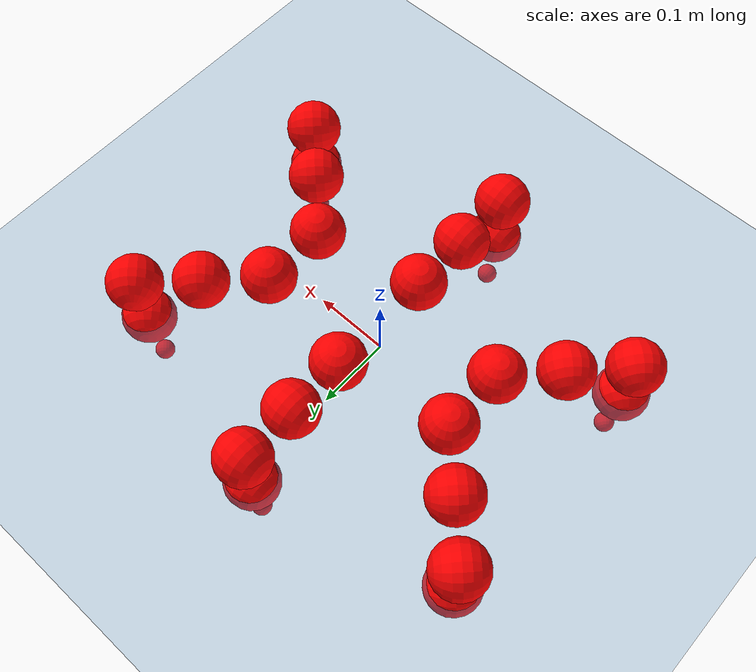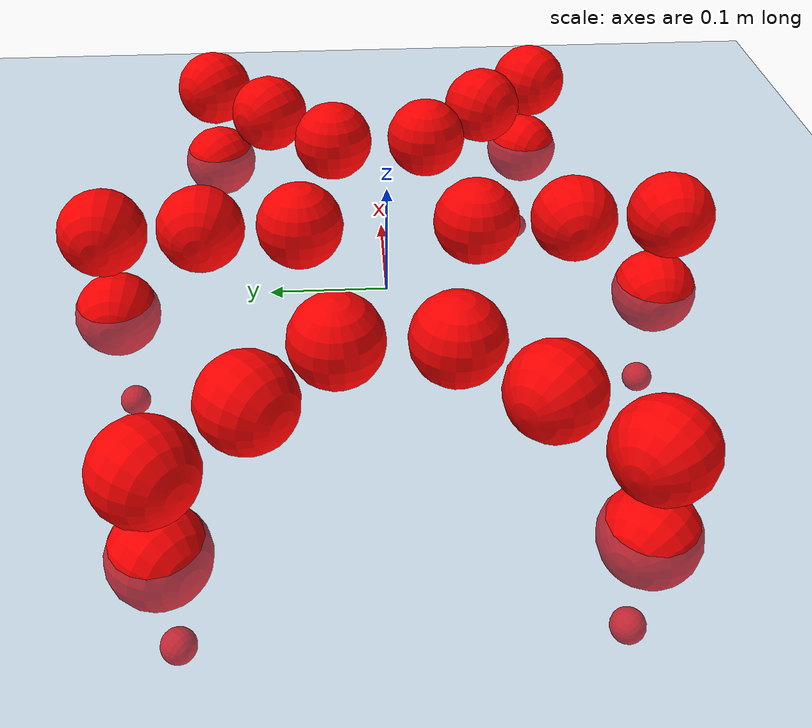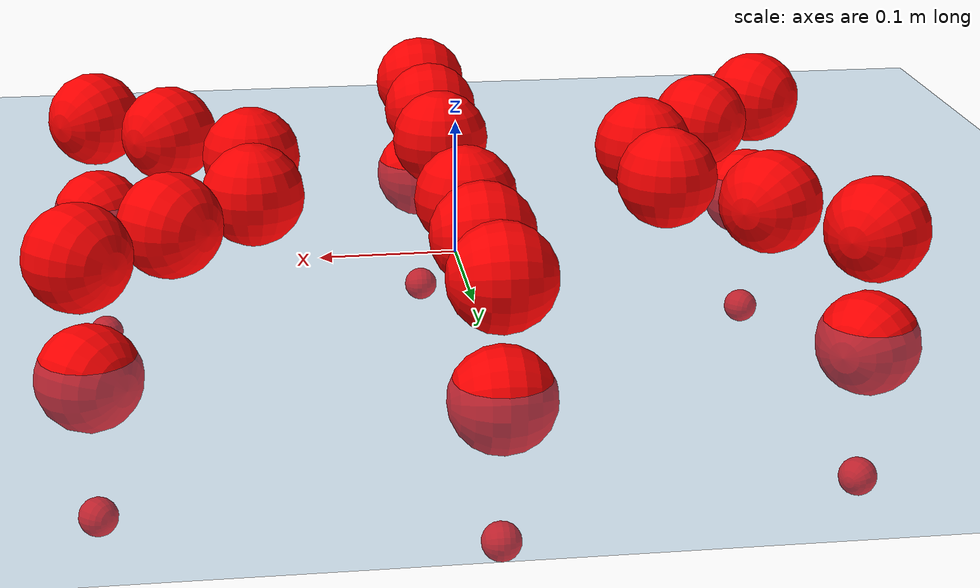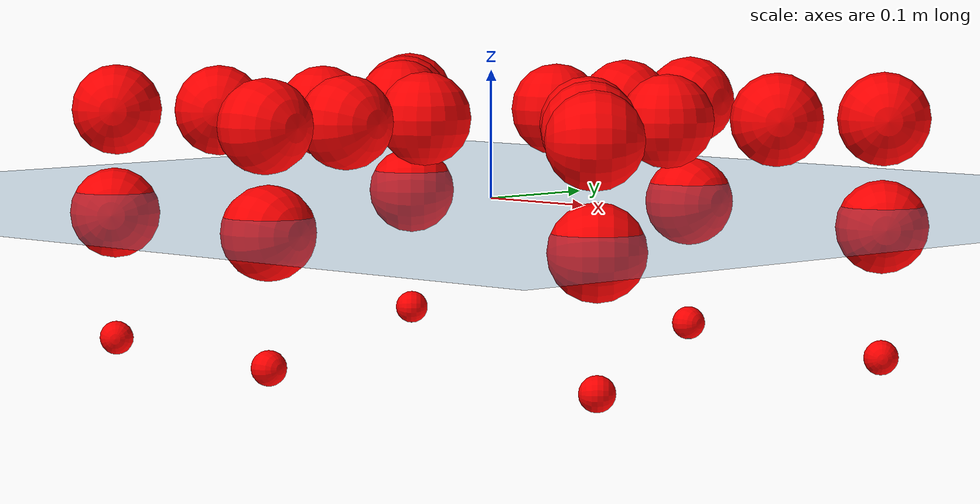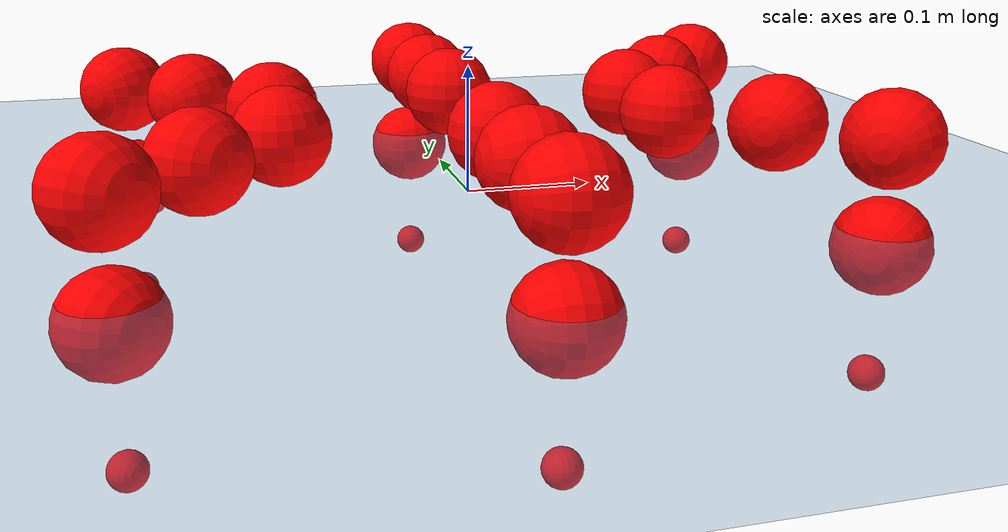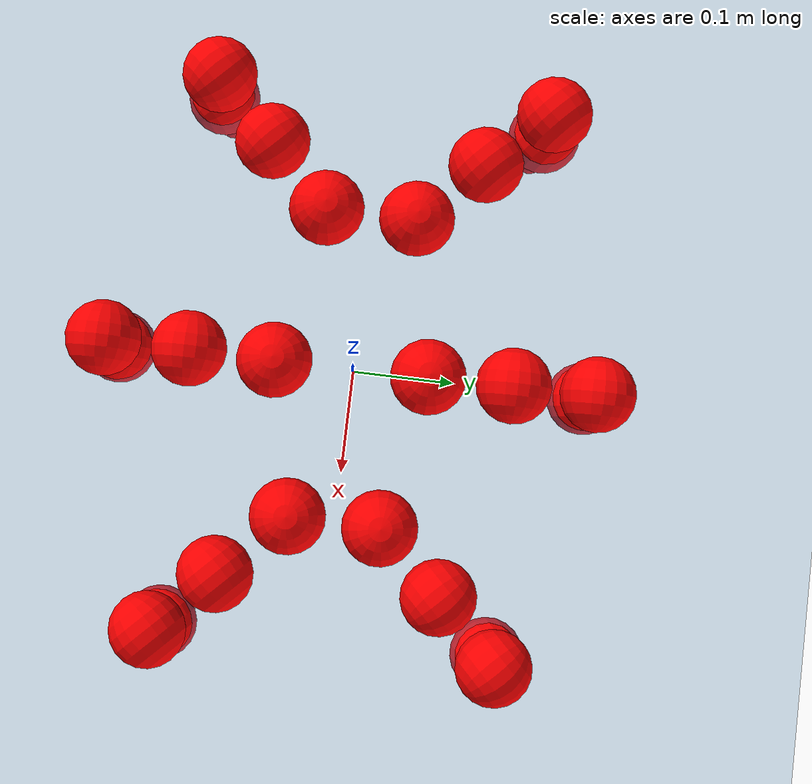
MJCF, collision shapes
<mujoco model="Golem">
  <compiler angle="radian" assetdir="assets" balanceinertia="true" inertiafromgeom="false"/>

  <option timestep="0.005" density="1.2" viscosity="2e-05"/>

  <size nkey="1"/>

  <visual>
    <quality shadowsize="8192"/>
    <map shadowclip="0.5"/>
  </visual>

  <default>
    <default class="/">
      <joint armature="0.01" damping="0.01" frictionloss="0.01"/>
      <geom contype="0" conaffinity="0" group="1" solref="-1000 -80"/>
      <site size="0.01 0.005 0.005" group="5"/>
      <general forcelimited="true" biastype="affine" gainprm="25" biasprm="0 -25 -0.5"/>
      <default class="visual">
        <geom type="mesh" group="2"/>
      </default>
      <default class="collision">
        <geom group="3"/>
      </default>
      <default class="foot">
        <geom size="0.01 0 0" condim="6" group="4" priority="1" solimp="0.015 1 0.01"/>
      </default>
      <default class="reward_collision_sphere">
        <geom group="5" rgba="1 0 0 1"/>
      </default>
    </default>
  </default>

  <asset>
    <texture type="skybox" colorspace="auto" name="//unnamed_texture_0" builtin="gradient" rgb1="0.95 0.95 0.95" rgb2="0.95 0.95 0.95" width="100" height="600"/>
    <texture type="2d" colorspace="auto" name="texplane" builtin="checker" rgb1="0.345 0.575 0.748" rgb2="0.345 0.575 0.748" markrgb="1 1 1" width="512" height="512"/>
    <material name="MatPlane" class="/" texture="texplane" texuniform="true" texrepeat="2 2" specular="0.9"/>
    <mesh name="body" class="/" file="body.stl" scale="0.001 0.001 0.001"/>
    <mesh name="coxa" class="/" file="coxa.stl" scale="0.001 0.001 0.001"/>
    <mesh name="femur" class="/" file="femur.stl" scale="0.001 0.001 0.001"/>
    <mesh name="tibia" class="/" file="tibia.stl" scale="0.001 0.001 0.001"/>
    <mesh name="tarsus" class="/" file="tarsus.stl" scale="0.001 0.001 0.001"/>
  </asset>

  <worldbody>
    <geom name="floor" class="/" size="100 100 0.125" type="plane" group="0" material="MatPlane"/>
    <light name="toplight_shadow" class="/" pos="0 0 5" dir="0.0990148 0.0990148 -0.990148" type="directional" ambient="0.04 0.04 0.04" diffuse="0.55 0.55 0.55" specular="0.12 0.12 0.12"/>
    <light name="toplight_fill" class="/" pos="0 0 5" dir="0.0990148 0.0990148 -0.990148" type="directional" castshadow="false" ambient="0.04 0.04 0.04" diffuse="0.3 0.3 0.3" specular="0.08 0.08 0.08"/>
    <body name="trunk" pos="-7.23248e-05 0.000641343 -0.00110552" quat="0.999999 -0.000196982 -0.000343657 0.000926602">
      <inertial pos="-0.000101056 0.000249122 -0.0029656" quat="0.999989 -0.0044497 0.00139075 6.6379e-05" mass="2.65067" diaginertia="0.00740116 0.00250726 0.0105912"/>
      <joint name="//unnamed_joint_0" type="free"/>
      <geom name="//unnamed_geom_1" class="/" pos="0 0 0.0647334" quat="1 0 0 0" type="mesh" rgba="0.9 0.9 0.9 1" mesh="body"/>
      <site name="imu" class="/" pos="0.127461 0.0107314 0.114358" size="0.00903181"/>
      <camera name="track" class="/" pos="0 -1.51682 0" quat="0.707107 0.707107 0 0" mode="trackcom"/>
      <camera name="ego_camera" class="/" pos="0.122157 0 0.101146" quat="-0.5 -0.5 0.5 0.5"/>
      <body name="coxa_RR" pos="-0.167827 -0.0629033 0.0651267" quat="0.382873 0.001279 0.000312798 -0.9238">
        <inertial pos="0.00176027 -0.000937438 -0.000289994" quat="0.999999 -0.000388575 0.00150981 -0.000725235" mass="0.153592" diaginertia="0.00751934 0.00261999 0.0110778"/>
        <joint name="coxa_joint_RR" class="/" pos="0 0 0" axis="0.00732698 0.00308541 -0.999968" range="-3.14734 3.15888" armature="0.00861523" damping="0" frictionloss="0.00871047"/>
        <geom name="//unnamed_geom_2" class="/" type="mesh" rgba="0.2 0.2 0.2 1" mesh="coxa"/>
        <geom name="//unnamed_geom_3" class="reward_collision_sphere" size="0.0361272" pos="-0.0281901 0 0"/>
        <body name="femur_RR" pos="0.0548594 0.000173587 0.000595159" quat="0.498885 -0.500158 0.500567 0.500387">
          <inertial pos="0.000104318 0.00255221 0.000368976" quat="0.999988 -0.0013898 0.000661827 -0.00472748" mass="0.143813" diaginertia="0.00717602 0.0024396 0.0102671"/>
          <joint name="femur_joint_RR" class="/" pos="0 0 0" axis="4.08831e-05 -0.00109152 -0.999999" range="-3.15832 3.15778" armature="0.00999956" damping="0" frictionloss="0.00900846"/>
          <geom name="//unnamed_geom_4" class="/" type="mesh" rgba="0.9 0.9 0.9 1" mesh="femur"/>
          <geom name="//unnamed_geom_5" class="reward_collision_sphere" size="0.0361272"/>
          <body name="tibia_RR" pos="-0.00101926 -0.0823876 -0.000601625" quat="-1.42822e-05 1 -0.000176891 9.1216e-05">
            <inertial pos="0.000319548 0.00266939 -0.000676632" quat="1 -0.000304172 4.4699e-05 -0.000191831" mass="0.143628" diaginertia="0.00713304 0.00245607 0.0103366"/>
            <joint name="tibia_joint_RR" class="/" pos="0 0 0" axis="-0.0129646 0.00212745 0.999914" range="-3.08866 3.12199" armature="0.00876526" damping="0.00329861" frictionloss="0.0102208"/>
            <geom name="//unnamed_geom_6" class="/" type="mesh" rgba="0.2 0.2 0.2 1" mesh="tibia"/>
            <geom name="//unnamed_geom_7" class="reward_collision_sphere" size="0.0361272"/>
            <body name="tarsus_RR" pos="0.0826611 0.00214378 -0.00251051" quat="1 8.72958e-05 0.000119849 -0.000187029">
              <inertial pos="0.0564701 0.00107182 0.0015149" quat="0.500166 0.500022 0.499699 0.500113" mass="0.143179" diaginertia="0.00704734 0.00246637 0.0106097"/>
              <joint name="tarsus_joint_RR" class="/" pos="0 0 0" axis="0.00757511 0.000830598 0.999971" range="-3.14878 3.13256" armature="0.00938257" damping="0.00493114" frictionloss="0.0089236"/>
              <geom name="//unnamed_geom_8" class="/" type="mesh" rgba="0.9 0.9 0.9 1" mesh="tarsus"/>
              <geom name="foot_1" class="foot" size="0.0082936" pos="0.105243 0 0" quat="0 -0.707107 0 0.707107"/>
              <geom name="//unnamed_geom_10" class="reward_collision_sphere" size="0.0361272"/>
              <geom name="//unnamed_geom_11" class="reward_collision_sphere" size="0.0135477" pos="0.101015 0 0"/>
              <site name="foot_1" class="foot" pos="0.105243 0 0" quat="0 -0.707107 0 0.707107" size="0.00903181"/>
            </body>
          </body>
        </body>
      </body>
      <body name="coxa_RM" pos="0.00233947 -0.103479 0.0666789" quat="0.707083 -0.000320964 0.000145262 -0.707131">
        <inertial pos="0.000294937 0.000280391 -0.00193723" quat="0.999913 0.0125494 -0.00223382 -0.00346268" mass="0.152024" diaginertia="0.00761856 0.0026754 0.0111827"/>
        <joint name="coxa_joint_RM" class="/" pos="0 0 0" axis="0.0110736 -0.000486616 -0.999939" range="-3.13538 3.1326" armature="0.00950269" damping="0.01119" frictionloss="0.00956357"/>
        <geom name="//unnamed_geom_12" class="/" type="mesh" rgba="0.2 0.2 0.2 1" mesh="coxa"/>
        <geom name="//unnamed_geom_13" class="reward_collision_sphere" size="0.0361272" pos="-0.0281901 0 0"/>
        <body name="femur_RM" pos="0.0531233 -0.00148115 0.000358444" quat="0.499958 -0.500152 0.499933 0.499958">
          <inertial pos="6.78919e-05 0.00135906 -0.000322358" quat="0.999995 -0.000672024 0.00122663 -0.0027575" mass="0.147669" diaginertia="0.00710338 0.00249018 0.0105516"/>
          <joint name="femur_joint_RM" class="/" pos="0 0 0" axis="-0.000256456 -0.000274957 -1" range="-3.0994 3.14062" armature="0.00970118" damping="0.010308" frictionloss="0.010112"/>
          <geom name="//unnamed_geom_14" class="/" type="mesh" rgba="0.9 0.9 0.9 1" mesh="femur"/>
          <geom name="//unnamed_geom_15" class="reward_collision_sphere" size="0.0361272"/>
          <body name="tibia_RM" pos="-0.000601537 -0.0812905 -0.000881545" quat="-6.12441e-05 1 -7.17129e-05 9.96709e-05">
            <inertial pos="0.000583648 0.000258526 0.00188026" quat="0.99999 0.00390059 -0.00100208 -0.0017683" mass="0.151921" diaginertia="0.00727943 0.00251825 0.01056"/>
            <joint name="tibia_joint_RM" class="/" pos="0 0 0" axis="-0.00686167 -0.00860872 0.999939" stiffness="0.000337852" range="-3.14933 3.16654" armature="0.00786937" damping="0.0133068" frictionloss="0.0101742"/>
            <geom name="//unnamed_geom_16" class="/" type="mesh" rgba="0.2 0.2 0.2 1" mesh="tibia"/>
            <geom name="//unnamed_geom_17" class="reward_collision_sphere" size="0.0361272"/>
            <body name="tarsus_RM" pos="0.0796079 -0.00240449 -0.000522535" quat="1 0.000594964 -0.000400549 0.000121143">
              <inertial pos="0.056232 0.000411901 0.000116242" quat="0.499662 0.500593 0.500223 0.49952" mass="0.155382" diaginertia="0.00750633 0.00258557 0.0109172"/>
              <joint name="tarsus_joint_RM" class="/" pos="0 0 0" axis="-0.00147836 -0.00269779 0.999995" range="-3.15402 3.15647" armature="0.00910627" damping="0.00795112" frictionloss="0.00856978"/>
              <geom name="//unnamed_geom_18" class="/" type="mesh" rgba="0.9 0.9 0.9 1" mesh="tarsus"/>
              <geom name="foot_2" class="foot" size="0.00870027" pos="0.105243 0 0" quat="0 -0.707107 0 0.707107"/>
              <geom name="//unnamed_geom_20" class="reward_collision_sphere" size="0.0361272"/>
              <geom name="//unnamed_geom_21" class="reward_collision_sphere" size="0.0135477" pos="0.101015 0 0"/>
              <site name="foot_2" class="foot" pos="0.105243 0 0" quat="0 -0.707107 0 0.707107" size="0.00903181"/>
            </body>
          </body>
        </body>
      </body>
      <body name="coxa_RF" pos="0.166778 -0.0655208 0.0671975" quat="0.923911 -0.000453775 -0.000352796 -0.382608">
        <inertial pos="-0.00244944 0.000439342 -0.00159752" quat="0.999989 0.00294872 0.00354397 -0.00111169" mass="0.147163" diaginertia="0.00759667 0.00258373 0.010998"/>
        <joint name="coxa_joint_RF" class="/" pos="0 0 0" axis="0.00821153 0.00573587 -0.99995" range="-3.13259 3.1177" armature="0.00932047" damping="0.0219162" frictionloss="0.0101289"/>
        <geom name="//unnamed_geom_22" class="/" type="mesh" rgba="0.2 0.2 0.2 1" mesh="coxa"/>
        <geom name="//unnamed_geom_23" class="reward_collision_sphere" size="0.0361272" pos="-0.0281901 0 0"/>
        <body name="femur_RF" pos="0.0575523 -0.000123511 0.00105508" quat="0.50061 -0.499087 0.499903 0.500399">
          <inertial pos="-0.000224782 7.49342e-05 0.00114093" quat="0.999998 -0.00133724 -0.000585843 -0.00143485" mass="0.148654" diaginertia="0.00725208 0.00248339 0.0104521"/>
          <joint name="femur_joint_RF" class="/" pos="0 0 0" axis="-0.000458024 0.00371176 -0.999993" range="-3.14319 3.1375" armature="0.00930163" damping="0.011586" frictionloss="0.00896871"/>
          <geom name="//unnamed_geom_24" class="/" type="mesh" rgba="0.9 0.9 0.9 1" mesh="femur"/>
          <geom name="//unnamed_geom_25" class="reward_collision_sphere" size="0.0361272"/>
          <body name="tibia_RF" pos="0.00251613 -0.0809008 0.00130333" quat="0.000172837 1 0.000307114 2.90597e-05">
            <inertial pos="0.00015465 -0.0022807 -0.0020451" quat="0.999928 0.000173461 0.00677266 0.00987101" mass="0.141933" diaginertia="0.00715324 0.00245498 0.0105731"/>
            <joint name="tibia_joint_RF" class="/" pos="0 0 0" axis="-0.00235237 0.010575 0.999941" stiffness="0.00436043" range="-3.14086 3.14779" armature="0.00930701" damping="0.000693123" frictionloss="0.00868805"/>
            <geom name="//unnamed_geom_26" class="/" type="mesh" rgba="0.2 0.2 0.2 1" mesh="tibia"/>
            <geom name="//unnamed_geom_27" class="reward_collision_sphere" size="0.0361272"/>
            <body name="tarsus_RF" pos="0.0796429 2.52175e-05 -0.00159455" quat="1 -5.75698e-05 1.68633e-05 4.29368e-05">
              <inertial pos="0.0545986 -0.000706092 -0.00012844" quat="0.49806 0.498395 0.500621 0.502908" mass="0.148476" diaginertia="0.0073459 0.00244454 0.0105295"/>
              <joint name="tarsus_joint_RF" class="/" pos="0 0 0" axis="0.0107957 0.0117159 0.999873" range="-3.13207 3.15945" armature="0.00937259" damping="0.00324871" frictionloss="0.00928106"/>
              <geom name="//unnamed_geom_28" class="/" type="mesh" rgba="0.9 0.9 0.9 1" mesh="tarsus"/>
              <geom name="foot_3" class="foot" size="0.00887155" pos="0.105243 0 0" quat="0 -0.707107 0 0.707107"/>
              <geom name="//unnamed_geom_30" class="reward_collision_sphere" size="0.0361272"/>
              <geom name="//unnamed_geom_31" class="reward_collision_sphere" size="0.0135477" pos="0.101015 0 0"/>
              <site name="foot_3" class="foot" pos="0.105243 0 0" quat="0 -0.707107 0 0.707107" size="0.00903181"/>
            </body>
          </body>
        </body>
      </body>
      <body name="coxa_LR" pos="-0.166876 0.0637135 0.0670963" quat="0.382662 -0.000234522 0.00118106 0.923888">
        <inertial pos="2.88419e-05 0.00183246 -0.00196638" quat="0.99999 0.00382406 0.000711801 -0.00235488" mass="0.144878" diaginertia="0.00733858 0.00244403 0.0104752"/>
        <joint name="coxa_joint_LR" class="/" pos="0 0 0" axis="-0.0128234 0.00355446 -0.999911" range="-3.13532 3.18842" armature="0.0091962" damping="0.0105757" frictionloss="0.00972882"/>
        <geom name="//unnamed_geom_32" class="/" type="mesh" rgba="0.2 0.2 0.2 1" mesh="coxa"/>
        <geom name="//unnamed_geom_33" class="reward_collision_sphere" size="0.0361272" pos="-0.0281901 0 0"/>
        <body name="femur_LR" pos="0.0561953 -0.000319981 -0.000243684" quat="0.500144 -0.49978 0.500072 0.500003">
          <inertial pos="-6.71491e-05 0.0014468 -0.000936704" quat="0.999916 0.0111638 0.00643567 0.00104236" mass="0.149526" diaginertia="0.00758394 0.00257298 0.0105727"/>
          <joint name="femur_joint_LR" class="/" pos="0 0 0" axis="-0.00770106 0.0117074 0.999902" range="-3.13985 3.12725" armature="0.0101831" damping="0.00530863" frictionloss="0.00914836"/>
          <geom name="//unnamed_geom_34" class="/" type="mesh" rgba="0.9 0.9 0.9 1" mesh="femur"/>
          <geom name="//unnamed_geom_35" class="reward_collision_sphere" size="0.0361272"/>
          <body name="tibia_LR" pos="0.00154433 -0.0826192 -0.00267337" quat="0.000113351 1 0.000321511 -0.000180964">
            <inertial pos="-0.000392059 -0.000755755 0.00200248" quat="0.999976 -0.00438108 -0.00539304 0.000709641" mass="0.149858" diaginertia="0.00715314 0.00247258 0.0105116"/>
            <joint name="tibia_joint_LR" class="/" pos="0 0 0" axis="0.0017345 -0.000860212 -0.999998" range="-3.0885 3.17126" armature="0.0080903" damping="0.00435967" frictionloss="0.00904744"/>
            <geom name="//unnamed_geom_36" class="/" type="mesh" rgba="0.2 0.2 0.2 1" mesh="tibia"/>
            <geom name="//unnamed_geom_37" class="reward_collision_sphere" size="0.0361272"/>
            <body name="tarsus_LR" pos="0.081309 0.0005247 0.00174718" quat="1 -3.48724e-05 -6.21104e-05 5.27444e-05">
              <inertial pos="0.0574867 -0.00199151 -0.000792589" quat="0.499634 0.500601 0.499619 0.500146" mass="0.144339" diaginertia="0.00741521 0.00262033 0.0107514"/>
              <joint name="tarsus_joint_LR" class="/" pos="0 0 0" axis="0.00363441 0.000621784 -0.999993" range="-3.11973 3.1566" armature="0.00908679" damping="0.00207885" frictionloss="0.00869389"/>
              <geom name="//unnamed_geom_38" class="/" type="mesh" rgba="0.9 0.9 0.9 1" mesh="tarsus"/>
              <geom name="foot_4" class="foot" size="0.00928516" pos="0.105243 0 0" quat="0.707107 0 -0.707107 0"/>
              <geom name="//unnamed_geom_40" class="reward_collision_sphere" size="0.0361272"/>
              <geom name="//unnamed_geom_41" class="reward_collision_sphere" size="0.0135477" pos="0.101015 0 0"/>
              <site name="foot_4" class="foot" pos="0.105243 0 0" quat="0.707107 0 -0.707107 0" size="0.00903181"/>
            </body>
          </body>
        </body>
      </body>
      <body name="coxa_LM" pos="0.00204255 0.0992233 0.067946" quat="0.707067 0.000830214 9.92279e-05 0.707146">
        <inertial pos="0.000381152 0.000269948 -0.00200812" quat="0.999992 0.000841828 0.000841728 -0.00380911" mass="0.146385" diaginertia="0.0072189 0.00248234 0.010458"/>
        <joint name="coxa_joint_LM" class="/" pos="0 0 0" axis="-0.000233627 0.00383532 -0.999993" range="-3.12275 3.12816" armature="0.00862954" damping="0.0025185" frictionloss="0.0090141"/>
        <geom name="//unnamed_geom_42" class="/" type="mesh" rgba="0.2 0.2 0.2 1" mesh="coxa"/>
        <geom name="//unnamed_geom_43" class="reward_collision_sphere" size="0.0361272" pos="-0.0281901 0 0"/>
        <body name="femur_LM" pos="0.0527256 0.00076971 0.000430276" quat="0.500018 -0.500017 0.499985 0.499981">
          <inertial pos="-0.00159274 -0.000598207 -0.00273912" quat="0.999964 0.00436221 -0.00106758 0.00725611" mass="0.146244" diaginertia="0.00734639 0.00250505 0.0106682"/>
          <joint name="femur_joint_LM" class="/" pos="0 0 0" axis="0.000106191 7.48093e-05 1" range="-3.16106 3.08637" armature="0.00868403" damping="0" frictionloss="0.00805729"/>
          <geom name="//unnamed_geom_44" class="/" type="mesh" rgba="0.9 0.9 0.9 1" mesh="femur"/>
          <geom name="//unnamed_geom_45" class="reward_collision_sphere" size="0.0361272"/>
          <body name="tibia_LM" pos="0.000174447 -0.0793277 0.000906289" quat="-1.13789e-06 1 9.2201e-06 -1.67964e-08">
            <inertial pos="-0.000218544 -0.000805389 0.000248562" quat="0.999994 0.000804749 0.00295332 0.00155112" mass="0.14341" diaginertia="0.00708102 0.00243646 0.0102718"/>
            <joint name="tibia_joint_LM" class="/" pos="0 0 0" axis="-0.0113377 -0.00356925 -0.999929" range="-3.09921 3.1344" armature="0.0102221" damping="0" frictionloss="0.00994098"/>
            <geom name="//unnamed_geom_46" class="/" type="mesh" rgba="0.2 0.2 0.2 1" mesh="tibia"/>
            <geom name="//unnamed_geom_47" class="reward_collision_sphere" size="0.0361272"/>
            <body name="tarsus_LM" pos="0.0831488 -0.000129185 -0.000877078" quat="1 -8.59005e-05 0.000154359 -5.1289e-05">
              <inertial pos="0.0565944 -0.00203759 -6.78731e-05" quat="0.500064 0.500778 0.49915 0.500007" mass="0.142077" diaginertia="0.00717876 0.00234716 0.0103361"/>
              <joint name="tarsus_joint_LM" class="/" pos="0 0 0" axis="0.00353714 -5.08285e-05 -0.999994" stiffness="0.0118948" range="-3.13532 3.13438" armature="0.00931877" damping="0.0224779" frictionloss="0.0102227"/>
              <geom name="//unnamed_geom_48" class="/" type="mesh" rgba="0.9 0.9 0.9 1" mesh="tarsus"/>
              <geom name="foot_5" class="foot" size="0.00940247" pos="0.105243 0 0" quat="0.707107 0 -0.707107 0"/>
              <geom name="//unnamed_geom_50" class="reward_collision_sphere" size="0.0361272"/>
              <geom name="//unnamed_geom_51" class="reward_collision_sphere" size="0.0135477" pos="0.101015 0 0"/>
              <site name="foot_5" class="foot" pos="0.105243 0 0" quat="0.707107 0 -0.707107 0" size="0.00903181"/>
            </body>
          </body>
        </body>
      </body>
      <body name="coxa_LF" pos="0.168138 0.0614122 0.0658183" quat="0.923988 -0.00019451 -0.000109286 0.382422">
        <inertial pos="-0.00233242 -0.00256337 -0.00122303" quat="0.999987 -0.000340836 0.00505079 -0.000259285" mass="0.143415" diaginertia="0.00715435 0.00236732 0.0105637"/>
        <joint name="coxa_joint_LF" class="/" pos="0 0 0" axis="0.00807525 -0.00438656 -0.999958" range="-3.15073 3.13876" armature="0.00862833" damping="0.00351969" frictionloss="0.00824057"/>
        <geom name="//unnamed_geom_52" class="/" type="mesh" rgba="0.2 0.2 0.2 1" mesh="coxa"/>
        <geom name="//unnamed_geom_53" class="reward_collision_sphere" size="0.0361272" pos="-0.0281901 0 0"/>
        <body name="femur_LF" pos="0.0558477 0.00279946 0.000928817" quat="0.500028 -0.499578 0.499861 0.500533">
          <inertial pos="4.70745e-05 -0.000821856 -0.00105378" quat="1 -0.000251451 0.000575437 -6.73854e-05" mass="0.14133" diaginertia="0.00688163 0.00243618 0.0102662"/>
          <joint name="femur_joint_LF" class="/" pos="0 0 0" axis="-0.000997529 -0.0138208 0.999904" stiffness="0.000993257" range="-3.13971 3.17714" armature="0.0086436" damping="0.00906559" frictionloss="0.00892127"/>
          <geom name="//unnamed_geom_54" class="/" type="mesh" rgba="0.9 0.9 0.9 1" mesh="femur"/>
          <geom name="//unnamed_geom_55" class="reward_collision_sphere" size="0.0361272"/>
          <body name="tibia_LF" pos="-0.000602748 -0.0821127 -0.000455796" quat="9.30466e-05 1 3.63874e-05 -0.000216114">
            <inertial pos="0.000809835 0.00261035 -0.000249707" quat="0.999998 0.00109461 -0.00140866 0.00115532" mass="0.151076" diaginertia="0.00729797 0.00252604 0.0106241"/>
            <joint name="tibia_joint_LF" class="/" pos="0 0 0" axis="0.00565469 -0.000797237 -0.999984" range="-3.13084 3.10097" armature="0.00936008" damping="0.00317922" frictionloss="0.00855856"/>
            <geom name="//unnamed_geom_56" class="/" type="mesh" rgba="0.2 0.2 0.2 1" mesh="tibia"/>
            <geom name="//unnamed_geom_57" class="reward_collision_sphere" size="0.0361272"/>
            <body name="tarsus_LF" pos="0.0830322 -0.000659362 -0.00271319" quat="1 -5.12574e-05 9.79031e-05 -4.2456e-05">
              <inertial pos="0.0549972 -0.000774472 0.00114427" quat="0.502275 0.506405 0.488991 0.502157" mass="0.148063" diaginertia="0.00735834 0.00250328 0.0105745"/>
              <joint name="tarsus_joint_LF" class="/" pos="0 0 0" axis="0.00799985 -0.00827329 -0.999934" stiffness="0.0281213" range="-3.13976 3.10846" armature="0.0090078" damping="0.033798" frictionloss="0.00908244"/>
              <geom name="//unnamed_geom_58" class="/" type="mesh" rgba="0.9 0.9 0.9 1" mesh="tarsus"/>
              <geom name="foot_6" class="foot" size="0.00865674" pos="0.105243 0 0" quat="0.707107 0 -0.707107 0"/>
              <geom name="//unnamed_geom_60" class="reward_collision_sphere" size="0.0361272"/>
              <geom name="//unnamed_geom_61" class="reward_collision_sphere" size="0.0135477" pos="0.101015 0 0"/>
              <site name="foot_6" class="foot" pos="0.105243 0 0" quat="0.707107 0 -0.707107 0" size="0.00903181"/>
            </body>
          </body>
        </body>
      </body>
    </body>
  </worldbody>

  <contact>
    <pair class="/" geom1="floor" geom2="foot_1" name="//unnamed_contact_0"/>
    <pair class="/" geom1="floor" geom2="foot_2" name="//unnamed_contact_1"/>
    <pair class="/" geom1="floor" geom2="foot_3" name="//unnamed_contact_2"/>
    <pair class="/" geom1="floor" geom2="foot_4" name="//unnamed_contact_3"/>
    <pair class="/" geom1="floor" geom2="foot_5" name="//unnamed_contact_4"/>
    <pair class="/" geom1="floor" geom2="foot_6" name="//unnamed_contact_5"/>
  </contact>

  <actuator>
    <general name="coxa_joint_RR" class="/" joint="coxa_joint_RR" forcerange="-6.55828 6.55828" gainprm="22.0992" biasprm="0 -22.0992 -0.458889"/>
    <general name="femur_joint_RR" class="/" joint="femur_joint_RR" forcerange="-6.33267 6.33267" gainprm="22.0992" biasprm="0 -22.0992 -0.458889"/>
    <general name="tibia_joint_RR" class="/" joint="tibia_joint_RR" forcerange="-6.66705 6.66705" gainprm="22.0992" biasprm="0 -22.0992 -0.458889"/>
    <general name="tarsus_joint_RR" class="/" joint="tarsus_joint_RR" forcerange="-7.09285 7.09285" gainprm="22.0992" biasprm="0 -22.0992 -0.458889"/>
    <general name="coxa_joint_RM" class="/" joint="coxa_joint_RM" forcerange="-6.73945 6.73945" gainprm="22.0992" biasprm="0 -22.0992 -0.458889"/>
    <general name="femur_joint_RM" class="/" joint="femur_joint_RM" forcerange="-7.10129 7.10129" gainprm="22.0992" biasprm="0 -22.0992 -0.458889"/>
    <general name="tibia_joint_RM" class="/" joint="tibia_joint_RM" forcerange="-6.34154 6.34154" gainprm="22.0992" biasprm="0 -22.0992 -0.458889"/>
    <general name="tarsus_joint_RM" class="/" joint="tarsus_joint_RM" forcerange="-6.49872 6.49872" gainprm="22.0992" biasprm="0 -22.0992 -0.458889"/>
    <general name="coxa_joint_RF" class="/" joint="coxa_joint_RF" forcerange="-6.09839 6.09839" gainprm="22.0992" biasprm="0 -22.0992 -0.458889"/>
    <general name="femur_joint_RF" class="/" joint="femur_joint_RF" forcerange="-6.50071 6.50071" gainprm="22.0992" biasprm="0 -22.0992 -0.458889"/>
    <general name="tibia_joint_RF" class="/" joint="tibia_joint_RF" forcerange="-6.39554 6.39554" gainprm="22.0992" biasprm="0 -22.0992 -0.458889"/>
    <general name="tarsus_joint_RF" class="/" joint="tarsus_joint_RF" forcerange="-6.4387 6.4387" gainprm="22.0992" biasprm="0 -22.0992 -0.458889"/>
    <general name="coxa_joint_LR" class="/" joint="coxa_joint_LR" forcerange="-6.51818 6.51818" gainprm="22.0992" biasprm="0 -22.0992 -0.458889"/>
    <general name="femur_joint_LR" class="/" joint="femur_joint_LR" forcerange="-6.62482 6.62482" gainprm="22.0992" biasprm="0 -22.0992 -0.458889"/>
    <general name="tibia_joint_LR" class="/" joint="tibia_joint_LR" forcerange="-6.55704 6.55704" gainprm="22.0992" biasprm="0 -22.0992 -0.458889"/>
    <general name="tarsus_joint_LR" class="/" joint="tarsus_joint_LR" forcerange="-6.73195 6.73195" gainprm="22.0992" biasprm="0 -22.0992 -0.458889"/>
    <general name="coxa_joint_LM" class="/" joint="coxa_joint_LM" forcerange="-6.83077 6.83077" gainprm="22.0992" biasprm="0 -22.0992 -0.458889"/>
    <general name="femur_joint_LM" class="/" joint="femur_joint_LM" forcerange="-6.79853 6.79853" gainprm="22.0992" biasprm="0 -22.0992 -0.458889"/>
    <general name="tibia_joint_LM" class="/" joint="tibia_joint_LM" forcerange="-6.60548 6.60548" gainprm="22.0992" biasprm="0 -22.0992 -0.458889"/>
    <general name="tarsus_joint_LM" class="/" joint="tarsus_joint_LM" forcerange="-6.4682 6.4682" gainprm="22.0992" biasprm="0 -22.0992 -0.458889"/>
    <general name="coxa_joint_LF" class="/" joint="coxa_joint_LF" forcerange="-6.52044 6.52044" gainprm="22.0992" biasprm="0 -22.0992 -0.458889"/>
    <general name="femur_joint_LF" class="/" joint="femur_joint_LF" forcerange="-6.64665 6.64665" gainprm="22.0992" biasprm="0 -22.0992 -0.458889"/>
    <general name="tibia_joint_LF" class="/" joint="tibia_joint_LF" forcerange="-6.50909 6.50909" gainprm="22.0992" biasprm="0 -22.0992 -0.458889"/>
    <general name="tarsus_joint_LF" class="/" joint="tarsus_joint_LF" forcerange="-6.59219 6.59219" gainprm="22.0992" biasprm="0 -22.0992 -0.458889"/>
  </actuator>

  <sensor>
    <gyro site="imu" name="imu_angular_velocity"/>
    <velocimeter site="imu" name="imu_linear_velocity"/>
    <framelinvel objtype="site" objname="foot_1" name="foot_1_global_linear_velocity"/>
    <framelinvel objtype="site" objname="foot_2" name="foot_2_global_linear_velocity"/>
    <framelinvel objtype="site" objname="foot_3" name="foot_3_global_linear_velocity"/>
    <framelinvel objtype="site" objname="foot_4" name="foot_4_global_linear_velocity"/>
    <framelinvel objtype="site" objname="foot_5" name="foot_5_global_linear_velocity"/>
    <framelinvel objtype="site" objname="foot_6" name="foot_6_global_linear_velocity"/>
  </sensor>

  <keyframe>
    <key name="home" qpos="0 0 0.1457 1 0 0 0 0 0 0 0 0 0 0 0 0 0 0 0 0 0 0 0 0 0 0 0 0 0 0 0"/>
  </keyframe>
</mujoco>
